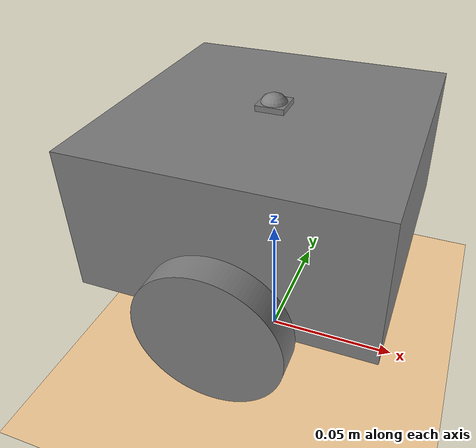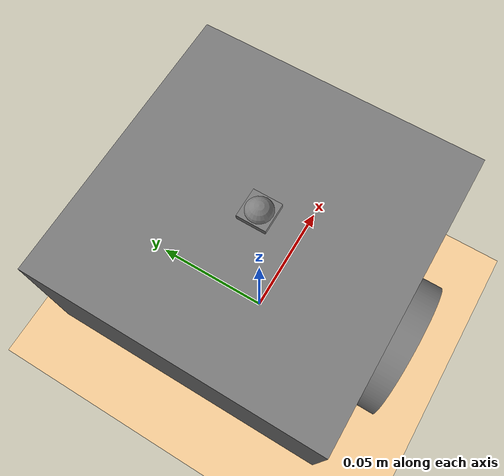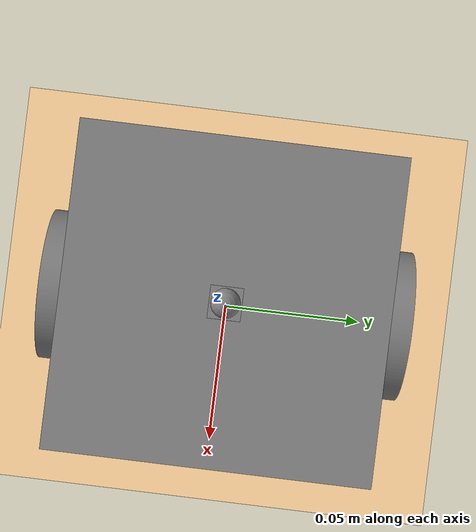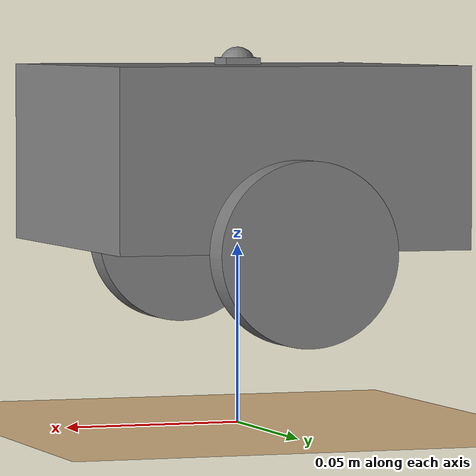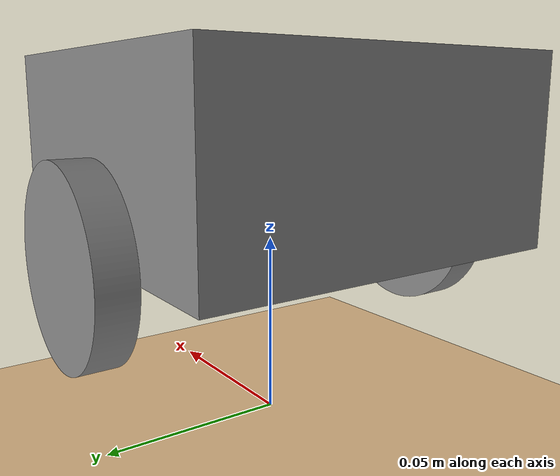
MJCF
<mujoco model="differential_drive_robot">
    <compiler angle="radian" />

    <asset>
        <mesh name="base" file="meshes/base.stl" scale="0.001 0.001 0.001" />
        <mesh name="left_wheel" file="meshes/left_wheel.stl" scale="0.001 0.001 0.001" />
        <mesh name="right_wheel" file="meshes/right_wheel.stl" scale="0.001 0.001 0.001" />
        <mesh name="imu" file="meshes/imu.stl" scale="0.001 0.001 0.001" />
    </asset>

    <worldbody>
        <!-- Standard directional light and ground plane -->
        <light directional="true" pos="-0.5 0.5 3" dir="0 0 -1" />
        <geom pos="0 0 0" size="5 5 1" type="plane" rgba="1 0.83 0.61 0.5" />

        <body name="base" pos="0.0 0.0 0.05">
            <freejoint name="root"/>
            <geom name="base_geom" type="mesh" mesh="base" />
            <inertial mass="3.925" pos="0.0 0.0 0.025" fullinertia="0.004088 0.004088 0.006541 0 0 0" />

            <body name="left_wheel" pos="0.0 0.05 0.0">
                <joint name="left_wheel_joint" type="hinge" axis="0 1 0" pos="0 0 0" />
                <geom name="left_wheel_geom" type="mesh" mesh="left_wheel" />
                <inertial mass="0.154" pos="0.0 0.005 0.0" fullinertia="2.53e-05 4.81e-05 2.53e-05 0 0 0" />
            </body>

            <body name="right_wheel" pos="0.0 -0.06 0.0">
                <joint name="right_wheel_joint" type="hinge" axis="0 1 0" pos="0 0.01 0.0" />
                <geom name="right_wheel_geom" type="mesh" mesh="right_wheel" />
                <inertial mass="0.154" pos="0.0 0.005 0.0" fullinertia="2.53e-05 4.81e-05 2.53e-05 0 0 0" />
            </body>

            <body name="imu" pos="0.0 0.0 0.05">
                <geom name="imu_geom" type="mesh" mesh="imu" />
                <inertial mass="0.00157" pos="0.0 0.0 0.001" fullinertia="1.36e-08 1.36e-08 2.61e-08 0 0 0" />

                <!-- This site acts as the physical anchor location for your IMU sensors -->
                <site name="imu_site" pos="0 0 0" size="0.005"/>
            </body>
        </body>
    </worldbody>

    <!-- . SPECIFIED WHEEL & IMU SENSORS -->
    <sensor>
        <!-- Wheel Positions (Joint angles in radians) -->
        <jointpos name="left_wheel_pos" joint="left_wheel_joint"/>
        <jointpos name="right_wheel_pos" joint="right_wheel_joint"/>

        <!-- Wheel Velocities (Joint speed in rad/s) -->
        <jointvel name="left_wheel_vel" joint="left_wheel_joint"/>
        <jointvel name="right_wheel_vel" joint="right_wheel_joint"/>

        <!-- IMU Sensors (Accelerometers & Gyroscopes bound to the imu_site) -->
        <accelerometer name="imu_accel" site="imu_site"/>
        <gyro name="imu_gyro" site="imu_site"/>
    </sensor>
    <actuator>
        <motor name="left_motor" joint="left_wheel_joint" gear="1.0" ctrlrange="-1 1" ctrllimited="true"/>
        <motor name="right_motor" joint="right_wheel_joint" gear="1.0" ctrlrange="-1 1" ctrllimited="true"/>
    </actuator>
</mujoco>
